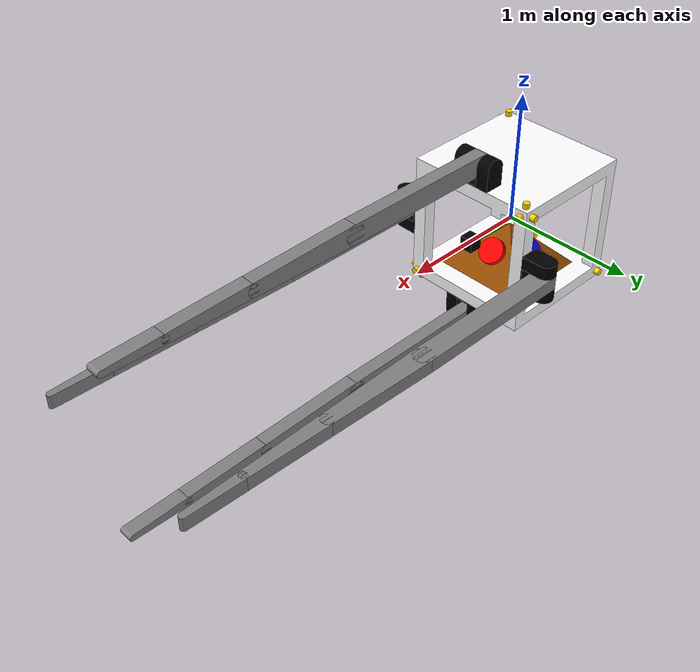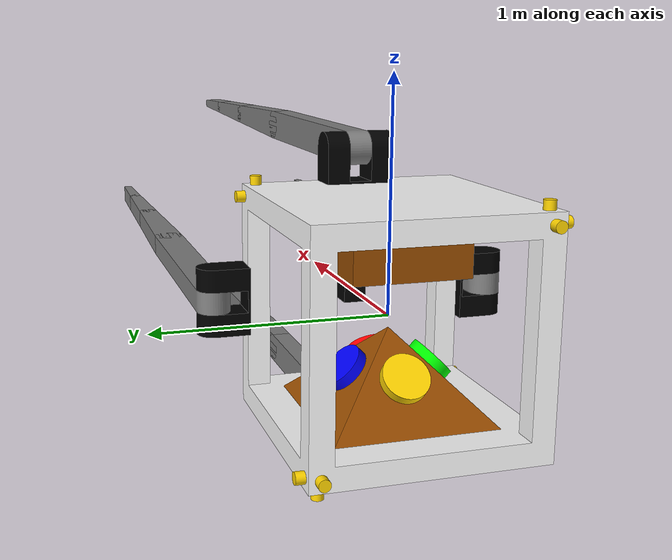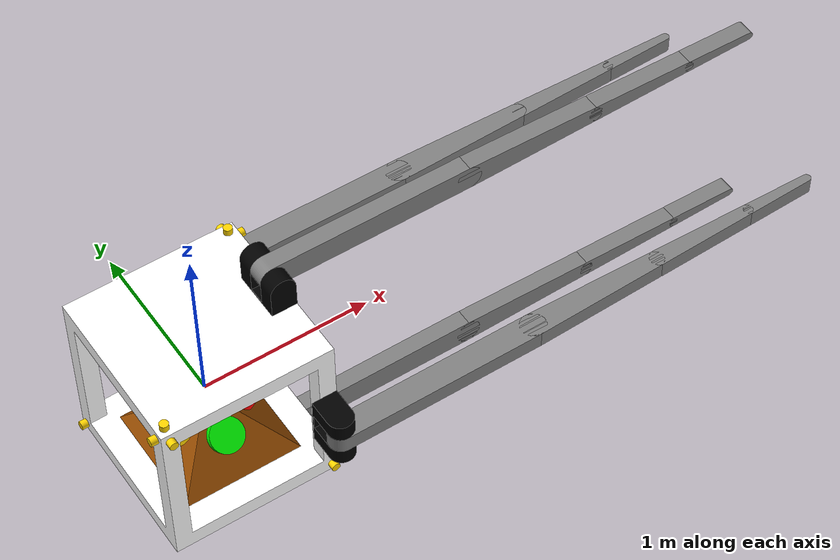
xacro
<?xml version="1.0" ?>
<robot name="reaction_wheel" xmlns:xacro="http://www.ros.org/wiki/xacro">

<xacro:include filename="$(find reaction_wheel_main)/urdf/materials.xacro" />
<xacro:include filename="$(find reaction_wheel_main)/urdf/reaction_wheel.trans" />
<xacro:include filename="$(find reaction_wheel_main)/urdf/reaction_wheel.gazebo" />

<xacro:property name="PI"                value="3.1415926535897931"/>
<xacro:property name="pi"                value="3.1415926535897931"/>

<!-- total base mass = 30 kg -->
<xacro:property name="base_mass"         value="18.4"    />
<xacro:property name="wheel_mass"        value="1"       />
<xacro:property name="mount_mass"        value="1"       />
<xacro:property name="window_mass"       value="0.25"    />
<xacro:property name="thruster_mass"     value="0.05"    />
<xacro:property name="dummy_mass"        value="5"       />
<xacro:property name="base_camera_mass"        value="0.001"       /> <!--unit : [kg]-->

<!-- arm mass = 1kg -->
<xacro:property name="link_1_mass"       value="3"     />
<xacro:property name="link_2_mass"       value="2.5"     />
<xacro:property name="link_3_mass"       value="2"     />
<xacro:property name="link_4_mass"       value="1"    />
<xacro:property name="link_mount_mass"   value="1"    />

<xacro:property name="base_length"       value="1"       />
<xacro:property name="base_thickness"    value="0.1"     />

<xacro:property name="link_mount_length" value="0.225"   />
<xacro:property name="link_mount_height" value="0.3"     />
<xacro:property name="link_mount_width"  value="0.15"    />
<xacro:property name="link_mount_circle" value="0.075"   />
<xacro:property name="link_mount_offset" value="0.0385"  />

<xacro:property name="link_1_height"     value="0.1"     />
<xacro:property name="link_1_length"     value="1.35"    />
<xacro:property name="link_1_width"      value="0.15"    />
<xacro:property name="link_1_circle"     value="0.075"   />

<xacro:property name="link_2_height"     value="0.1"     />
<xacro:property name="link_2_length"     value="0.927654"/>
<xacro:property name="link_2_width"      value="0.15"    />
<xacro:property name="link_2_circle"     value="0.052654"/>

<xacro:property name="link_3_height"     value="0.1"     />
<xacro:property name="link_3_length"     value="0.688548"/>
<xacro:property name="link_3_width"      value="0.105308"/>
<xacro:property name="link_3_circle"     value="0.035894" />

<xacro:property name="link_4_height"     value="0.1"     />
<xacro:property name="link_4_length"     value="0.460616"/>
<xacro:property name="link_4_width"      value="0.071789"/>
<xacro:property name="link_4_circle"     value="0.024721" />

<xacro:property name="mount_height"      value="0.35"    />
<xacro:property name="mount_width"       value="0.7"     />
<xacro:property name="mount_slide"       value="0.606218"/>

<xacro:property name="dummy_length"      value="0.5"     />
<xacro:property name="dummy_depth"       value="0.2"     />

<xacro:property name="wheel_radius"      value="0.2"     />
<xacro:property name="wheel_length"      value="0.1"     />

<xacro:property name="thruster_radius"   value="0.05"    />
<xacro:property name="thruster_length"   value="0.06"    />

<xacro:property name="window_height"     value="0.8"     />
<xacro:property name="window_width"      value="0.8"     />
<xacro:property name="window_depth"      value="0.1"     />

<xacro:property name="base_camera_length"      value="0.005"     /> <!--unit : [m]-->
<link name="dummy_base_link">
</link>
<joint name="dummy_to_base_fixed_joint" type="fixed">
  <parent link="dummy_base_link"/>
  <child link="base_link"/>
  <origin xyz="0 0 0" rpy="0 0 0"/>
</joint>
<link name="base_link">
  <inertial>
    <origin xyz="0 0 0" rpy="0 0 0"/> <!--axis does not move. Visual and Collision part move.-->
    <mass value="${base_mass}"/>
    <inertia ixx="${1/6*base_mass*base_length*base_length}"
             iyy="${1/6*base_mass*base_length*base_length}"
             izz="${1/6*base_mass*base_length*base_length}"
             ixy="0.0" iyz="0.0" ixz="0.0"/>
  </inertial>
  <visual>
    <origin xyz="0.0 0.0 0.0" rpy="0 0 0"/>
    <geometry>
      <mesh filename="package://reaction_wheel_main/meshes/base_link.stl" scale="0.001 0.001 0.001"/>
    </geometry>
    <material name="white"/>
  </visual>
  <collision>
    <origin xyz="0.0 0.0 0.0" rpy="0 0 0"/>
    <geometry>
      <mesh filename="package://reaction_wheel_main/meshes/base_link.stl" scale="0.001 0.001 0.001"/>
    </geometry>
  </collision>
</link>

<link name="thruster_1">
  <inertial>
    <origin xyz="0 0 0" rpy="0 0 0"/>
    <mass value="${thruster_mass}"/>
    <inertia ixx="${1/12*thruster_mass*(3*thruster_radius*thruster_radius+thruster_length*thruster_length)}"
             iyy="${1/12*thruster_mass*(3*thruster_radius*thruster_radius+thruster_length*thruster_length)}"
             izz="${1/2*thruster_mass*thruster_radius*thruster_radius}"
             ixy="0.0" iyz="0.0" ixz="0.0"/>
  </inertial>
  <visual>
    <origin xyz="0.0 0.0 0.0" rpy="0 0 0"/>
    <geometry>
      <mesh filename="package://reaction_wheel_main/meshes/thruster.stl" scale="0.001 0.001 0.001"/>
    </geometry>
    <material name="yellow"/>
  </visual>
  <collision>
    <origin xyz="0.0 0.0 0.0" rpy="0 0 0"/>
    <geometry>
      <mesh filename="package://reaction_wheel_main/meshes/thruster.stl" scale="0.001 0.001 0.001"/>
    </geometry>
  </collision>
</link>

<link name="thruster_2">
  <inertial>
    <origin xyz="0 0 0" rpy="0 0 0"/>
    <mass value="${thruster_mass}"/>
    <inertia ixx="${1/12*thruster_mass*(3*thruster_radius*thruster_radius+thruster_length*thruster_length)}"
             iyy="${1/12*thruster_mass*(3*thruster_radius*thruster_radius+thruster_length*thruster_length)}"
             izz="${1/2*thruster_mass*thruster_radius*thruster_radius}"
             ixy="0.0" iyz="0.0" ixz="0.0"/>
  </inertial>
  <visual>
    <origin xyz="0.0 0.0 0.0" rpy="0 0 0"/>
    <geometry>
      <mesh filename="package://reaction_wheel_main/meshes/thruster.stl" scale="0.001 0.001 0.001"/>
    </geometry>
    <material name="yellow"/>
  </visual>
  <collision>
    <origin xyz="0.0 0.0 0.0" rpy="0 0 0"/>
    <geometry>
      <mesh filename="package://reaction_wheel_main/meshes/thruster.stl" scale="0.001 0.001 0.001"/>
    </geometry>
  </collision>
</link>
<link name="thruster_3">
  <inertial>
    <origin xyz="0 0 0" rpy="0 0 0"/>
    <mass value="${thruster_mass}"/>
    <inertia ixx="${1/12*thruster_mass*(3*thruster_radius*thruster_radius+thruster_length*thruster_length)}"
             iyy="${1/12*thruster_mass*(3*thruster_radius*thruster_radius+thruster_length*thruster_length)}"
             izz="${1/2*thruster_mass*thruster_radius*thruster_radius}"
             ixy="0.0" iyz="0.0" ixz="0.0"/>
  </inertial>
  <visual>
    <origin xyz="0.0 0.0 0.0" rpy="0 0 0"/>
    <geometry>
      <mesh filename="package://reaction_wheel_main/meshes/thruster.stl" scale="0.001 0.001 0.001"/>
    </geometry>
    <material name="yellow"/>
  </visual>
  <collision>
    <origin xyz="0.0 0.0 0.0" rpy="0 0 0"/>
    <geometry>
      <mesh filename="package://reaction_wheel_main/meshes/thruster.stl" scale="0.001 0.001 0.001"/>
    </geometry>
  </collision>
</link>
<link name="thruster_7">
  <inertial>
    <origin xyz="0 0 0" rpy="0 0 0"/>
    <mass value="${thruster_mass}"/>
    <inertia ixx="${1/12*thruster_mass*(3*thruster_radius*thruster_radius+thruster_length*thruster_length)}"
             iyy="${1/12*thruster_mass*(3*thruster_radius*thruster_radius+thruster_length*thruster_length)}"
             izz="${1/2*thruster_mass*thruster_radius*thruster_radius}"
             ixy="0.0" iyz="0.0" ixz="0.0"/>
  </inertial>
  <visual>
    <origin xyz="0.0 0.0 0.0" rpy="0 0 0"/>
    <geometry>
      <mesh filename="package://reaction_wheel_main/meshes/thruster.stl" scale="0.001 0.001 0.001"/>
    </geometry>
    <material name="yellow"/>
  </visual>
  <collision>
    <origin xyz="0.0 0.0 0.0" rpy="0 0 0"/>
    <geometry>
      <mesh filename="package://reaction_wheel_main/meshes/thruster.stl" scale="0.001 0.001 0.001"/>
    </geometry>
  </collision>
</link>
<link name="thruster_8">
  <inertial>
    <origin xyz="0 0 0" rpy="0 0 0"/>
    <mass value="${thruster_mass}"/>
    <inertia ixx="${1/12*thruster_mass*(3*thruster_radius*thruster_radius+thruster_length*thruster_length)}"
             iyy="${1/12*thruster_mass*(3*thruster_radius*thruster_radius+thruster_length*thruster_length)}"
             izz="${1/2*thruster_mass*thruster_radius*thruster_radius}"
             ixy="0.0" iyz="0.0" ixz="0.0"/>
  </inertial>
  <visual>
    <origin xyz="0.0 0.0 0.0" rpy="0 0 0"/>
    <geometry>
      <mesh filename="package://reaction_wheel_main/meshes/thruster.stl" scale="0.001 0.001 0.001"/>
    </geometry>
    <material name="yellow"/>
  </visual>
  <collision>
    <origin xyz="0.0 0.0 0.0" rpy="0 0 0"/>
    <geometry>
      <mesh filename="package://reaction_wheel_main/meshes/thruster.stl" scale="0.001 0.001 0.001"/>
    </geometry>
  </collision>
</link>
<link name="thruster_9">
  <inertial>
    <origin xyz="0 0 0" rpy="0 0 0"/>
    <mass value="${thruster_mass}"/>
    <inertia ixx="${1/12*thruster_mass*(3*thruster_radius*thruster_radius+thruster_length*thruster_length)}"
             iyy="${1/12*thruster_mass*(3*thruster_radius*thruster_radius+thruster_length*thruster_length)}"
             izz="${1/2*thruster_mass*thruster_radius*thruster_radius}"
             ixy="0.0" iyz="0.0" ixz="0.0"/>
  </inertial>
  <visual>
    <origin xyz="0.0 0.0 0.0" rpy="0 0 0"/>
    <geometry>
      <mesh filename="package://reaction_wheel_main/meshes/thruster.stl" scale="0.001 0.001 0.001"/>
    </geometry>
    <material name="yellow"/>
  </visual>
  <collision>
    <origin xyz="0.0 0.0 0.0" rpy="0 0 0"/>
    <geometry>
      <mesh filename="package://reaction_wheel_main/meshes/thruster.stl" scale="0.001 0.001 0.001"/>
    </geometry>
  </collision>
</link>

<link name="thruster_4">
  <inertial>
    <origin xyz="0 0 0" rpy="0 0 0"/>
    <mass value="${thruster_mass}"/>
    <inertia ixx="${1/12*thruster_mass*(3*thruster_radius*thruster_radius+thruster_length*thruster_length)}"
             iyy="${1/12*thruster_mass*(3*thruster_radius*thruster_radius+thruster_length*thruster_length)}"
             izz="${1/2*thruster_mass*thruster_radius*thruster_radius}"
             ixy="0.0" iyz="0.0" ixz="0.0"/>
  </inertial>
  <visual>
    <origin xyz="0.0 0.0 0.0" rpy="0 0 0"/>
    <geometry>
      <mesh filename="package://reaction_wheel_main/meshes/thruster.stl" scale="0.001 0.001 0.001"/>
    </geometry>
    <material name="yellow"/>
  </visual>
  <collision>
    <origin xyz="0.0 0.0 0.0" rpy="0 0 0"/>
    <geometry>
      <mesh filename="package://reaction_wheel_main/meshes/thruster.stl" scale="0.001 0.001 0.001"/>
    </geometry>
  </collision>
</link>
<link name="thruster_5">
  <inertial>
    <origin xyz="0 0 0" rpy="0 0 0"/>
    <mass value="${thruster_mass}"/>
    <inertia ixx="${1/12*thruster_mass*(3*thruster_radius*thruster_radius+thruster_length*thruster_length)}"
             iyy="${1/12*thruster_mass*(3*thruster_radius*thruster_radius+thruster_length*thruster_length)}"
             izz="${1/2*thruster_mass*thruster_radius*thruster_radius}"
             ixy="0.0" iyz="0.0" ixz="0.0"/>
  </inertial>
  <visual>
    <origin xyz="0.0 0.0 0.0" rpy="0 0 0"/>
    <geometry>
      <mesh filename="package://reaction_wheel_main/meshes/thruster.stl" scale="0.001 0.001 0.001"/>
    </geometry>
    <material name="yellow"/>
  </visual>
  <collision>
    <origin xyz="0.0 0.0 0.0" rpy="0 0 0"/>
    <geometry>
      <mesh filename="package://reaction_wheel_main/meshes/thruster.stl" scale="0.001 0.001 0.001"/>
    </geometry>
  </collision>
</link>
<link name="thruster_6">
  <inertial>
    <origin xyz="0 0 0" rpy="0 0 0"/>
    <mass value="${thruster_mass}"/>
    <inertia ixx="${1/12*thruster_mass*(3*thruster_radius*thruster_radius+thruster_length*thruster_length)}"
             iyy="${1/12*thruster_mass*(3*thruster_radius*thruster_radius+thruster_length*thruster_length)}"
             izz="${1/2*thruster_mass*thruster_radius*thruster_radius}"
             ixy="0.0" iyz="0.0" ixz="0.0"/>
  </inertial>
  <visual>
    <origin xyz="0.0 0.0 0.0" rpy="0 0 0"/>
    <geometry>
      <mesh filename="package://reaction_wheel_main/meshes/thruster.stl" scale="0.001 0.001 0.001"/>
    </geometry>
    <material name="yellow"/>
  </visual>
  <collision>
    <origin xyz="0.0 0.0 0.0" rpy="0 0 0"/>
    <geometry>
      <mesh filename="package://reaction_wheel_main/meshes/thruster.stl" scale="0.001 0.001 0.001"/>
    </geometry>
  </collision>
</link>

<link name="thruster_10">
  <inertial>
    <origin xyz="0 0 0" rpy="0 0 0"/>
    <mass value="${thruster_mass}"/>
    <inertia ixx="${1/12*thruster_mass*(3*thruster_radius*thruster_radius+thruster_length*thruster_length)}"
             iyy="${1/12*thruster_mass*(3*thruster_radius*thruster_radius+thruster_length*thruster_length)}"
             izz="${1/2*thruster_mass*thruster_radius*thruster_radius}"
             ixy="0.0" iyz="0.0" ixz="0.0"/>
  </inertial>
  <visual>
    <origin xyz="0.0 0.0 0.0" rpy="0 0 0"/>
    <geometry>
      <mesh filename="package://reaction_wheel_main/meshes/thruster.stl" scale="0.001 0.001 0.001"/>
    </geometry>
    <material name="yellow"/>
  </visual>
  <collision>
    <origin xyz="0.0 0.0 0.0" rpy="0 0 0"/>
    <geometry>
      <mesh filename="package://reaction_wheel_main/meshes/thruster.stl" scale="0.001 0.001 0.001"/>
    </geometry>
  </collision>
</link>
<link name="thruster_11">
  <inertial>
    <origin xyz="0 0 0" rpy="0 0 0"/>
    <mass value="${thruster_mass}"/>
    <inertia ixx="${1/12*thruster_mass*(3*thruster_radius*thruster_radius+thruster_length*thruster_length)}"
             iyy="${1/12*thruster_mass*(3*thruster_radius*thruster_radius+thruster_length*thruster_length)}"
             izz="${1/2*thruster_mass*thruster_radius*thruster_radius}"
             ixy="0.0" iyz="0.0" ixz="0.0"/>
  </inertial>
  <visual>
    <origin xyz="0.0 0.0 0.0" rpy="0 0 0"/>
    <geometry>
      <mesh filename="package://reaction_wheel_main/meshes/thruster.stl" scale="0.001 0.001 0.001"/>
    </geometry>
    <material name="yellow"/>
  </visual>
  <collision>
    <origin xyz="0.0 0.0 0.0" rpy="0 0 0"/>
    <geometry>
      <mesh filename="package://reaction_wheel_main/meshes/thruster.stl" scale="0.001 0.001 0.001"/>
    </geometry>
  </collision>
</link>
<link name="thruster_12">
  <inertial>
    <origin xyz="0 0 0" rpy="0 0 0"/>
    <mass value="${thruster_mass}"/>
    <inertia ixx="${1/12*thruster_mass*(3*thruster_radius*thruster_radius+thruster_length*thruster_length)}"
             iyy="${1/12*thruster_mass*(3*thruster_radius*thruster_radius+thruster_length*thruster_length)}"
             izz="${1/2*thruster_mass*thruster_radius*thruster_radius}"
             ixy="0.0" iyz="0.0" ixz="0.0"/>
  </inertial>
  <visual>
    <origin xyz="0.0 0.0 0.0" rpy="0 0 0"/>
    <geometry>
      <mesh filename="package://reaction_wheel_main/meshes/thruster.stl" scale="0.001 0.001 0.001"/>
    </geometry>
    <material name="yellow"/>
  </visual>
  <collision>
    <origin xyz="0.0 0.0 0.0" rpy="0 0 0"/>
    <geometry>
      <mesh filename="package://reaction_wheel_main/meshes/thruster.stl" scale="0.001 0.001 0.001"/>
    </geometry>
  </collision>
</link>

<link name="front_window">
  <inertial>
    <origin xyz="0 0 0" rpy="0 0 0"/>
    <mass value="${window_mass}"/>
    <inertia ixx="${1/3*window_mass*window_height*window_width}"
             iyy="${1/3*window_mass*window_height*window_depth}"
             izz="${1/3*window_mass*window_width*window_depth}"
             ixy="0.0" iyz="0.0" ixz="0.0"/>
  </inertial>
  <collision>
    <origin xyz="0.0 0.0 0.0" rpy="0 0 0"/>
    <geometry>
      <mesh filename="package://reaction_wheel_main/meshes/window.stl" scale="0.001 0.001 0.001"/>
    </geometry>
  </collision>
</link>
<link name="right_window">
  <inertial>
    <origin xyz="0 0 0" rpy="0 0 0"/>
    <mass value="${window_mass}"/>
    <inertia ixx="${1/3*window_mass*window_height*window_width}"
             iyy="${1/3*window_mass*window_height*window_depth}"
             izz="${1/3*window_mass*window_width*window_depth}"
             ixy="0.0" iyz="0.0" ixz="0.0"/>
  </inertial>
  <collision>
    <origin xyz="0.0 0.0 0.0" rpy="0 0 0"/>
    <geometry>
      <mesh filename="package://reaction_wheel_main/meshes/window.stl" scale="0.001 0.001 0.001"/>
    </geometry>
  </collision>
</link>
<link name="left_window">
  <inertial>
    <origin xyz="0 0 0" rpy="0 0 0"/>
    <mass value="${window_mass}"/>
    <inertia ixx="${1/3*window_mass*window_height*window_width}"
             iyy="${1/3*window_mass*window_height*window_depth}"
             izz="${1/3*window_mass*window_width*window_depth}"
             ixy="0.0" iyz="0.0" ixz="0.0"/>
  </inertial>
  <collision>
    <origin xyz="0.0 0.0 0.0" rpy="0 0 0"/>
    <geometry>
      <mesh filename="package://reaction_wheel_main/meshes/window.stl" scale="0.001 0.001 0.001"/>
    </geometry>
  </collision>
</link>
<link name="back_window">
  <inertial>
    <origin xyz="0 0 0" rpy="0 0 0"/>
    <mass value="${window_mass}"/>
    <inertia ixx="${1/3*window_mass*window_height*window_width}"
             iyy="${1/3*window_mass*window_height*window_depth}"
             izz="${1/3*window_mass*window_width*window_depth}"
             ixy="0.0" iyz="0.0" ixz="0.0"/>
  </inertial>
  <collision>
    <origin xyz="0.0 0.0 0.0" rpy="0 0 0"/>
    <geometry>
      <mesh filename="package://reaction_wheel_main/meshes/window.stl" scale="0.001 0.001 0.001"/>
    </geometry>
  </collision>
</link>

<link name="base_camera">
  <inertial>
    <origin xyz="0 0 0" rpy="0 0 0"/> <!--axis does not move. Visual and Collision part move.-->
    <mass value="${base_camera_mass}"/>
    <inertia ixx="${1/6*base_camera_mass*base_camera_length*base_camera_length}"
             iyy="${1/6*base_camera_mass*base_camera_length*base_camera_length}"
             izz="${1/6*base_camera_mass*base_camera_length*base_camera_length}"
             ixy="0.0" iyz="0.0" ixz="0.0"/>
  </inertial>
  <visual>
    <origin xyz="0.0 0.0 0.0" rpy="0 0 0"/>
    <geometry>
      <mesh filename="package://reaction_wheel_main/meshes/base_camera.stl" scale="0.01 0.01 0.01"/>
    </geometry>
    <material name="black"/>
  </visual>
</link>
<link name="dummy">
  <inertial>
    <origin xyz="0 0 0" rpy="0 0 0"/>
    <mass value="${dummy_mass}"/>
    <inertia ixx="${1/3*dummy_mass*dummy_length*dummy_length}"
             iyy="${1/3*dummy_mass*dummy_length*dummy_depth}"
             izz="${1/3*dummy_mass*dummy_length*dummy_depth}"
             ixy="0.0" iyz="0.0" ixz="0.0"/>
  </inertial>
  <visual>
    <origin xyz="0.0 0.0 0.0" rpy="0 0 0"/>
    <geometry>
      <mesh filename="package://reaction_wheel_main/meshes/dummy.stl" scale="0.001 0.001 0.001"/>
    </geometry>
    <material name="brown"/>
  </visual>
  <collision>
    <origin xyz="0.0 0.0 0.0" rpy="0 0 0"/>
    <geometry>
      <mesh filename="package://reaction_wheel_main/meshes/dummy.stl" scale="0.001 0.001 0.001"/>
    </geometry>
  </collision>
</link>

<link name="reaction_wheel_mount">
  <inertial>
    <origin xyz="0 0 -0.0875" rpy="0 0 0"/>
    <mass value="${mount_mass}"/>
    <inertia ixx="${1/20*mount_mass*(2*mount_width*mount_width)}"
             iyy="${1/20*mount_mass*(2*mount_width*mount_width)}"
             izz="${1/20*mount_mass*(2*mount_width*mount_width)}"
             ixy="0.0" iyz="0.0" ixz="0.0"/>
  </inertial>
  <visual>
    <origin xyz="0.0 0.0 0.0" rpy="0 0 0"/>
    <geometry>
      <mesh filename="package://reaction_wheel_main/meshes/reaction_wheel_mount.stl" scale="0.001 0.001 0.001"/>
    </geometry>
    <material name="brown"/>
  </visual>
  <collision>
    <origin xyz="0.0 0.0 0.0" rpy="0 0 0"/>
    <geometry>
      <mesh filename="package://reaction_wheel_main/meshes/reaction_wheel_mount.stl" scale="0.001 0.001 0.001"/>
    </geometry>
  </collision>
</link>

<link name="reaction_wheel_front">
  <inertial>
    <origin xyz="0 0 0" rpy="0 0 0"/>
    <mass value="${wheel_mass}"/>
    <inertia ixx="${1/12*wheel_mass*(3*wheel_radius*wheel_radius+wheel_length*wheel_length)}"
             iyy="${1/12*wheel_mass*(3*wheel_radius*wheel_radius+wheel_length*wheel_length)}"
             izz="${1/2*wheel_mass*wheel_radius*wheel_radius}"
             ixy="0.0" iyz="0.0" ixz="0.0"/>

  </inertial>
  <visual>
    <origin xyz="0.0 0.0 0.0" rpy="0 0 0"/>
    <geometry>
      <mesh filename="package://reaction_wheel_main/meshes/reaction_wheel.stl" scale="0.001 0.001 0.001"/>
    </geometry>
    <material name="red"/>
  </visual>
  <collision>
    <origin xyz="0.0 0.0 0.0" rpy="0 0 0"/>
    <geometry>
      <mesh filename="package://reaction_wheel_main/meshes/reaction_wheel.stl" scale="0.001 0.001 0.001"/>
    </geometry>
  </collision>
</link>

<link name="reaction_wheel_right">
  <inertial>
    <origin xyz="0 0 0" rpy="0 0 0"/>
    <mass value="${wheel_mass}"/>
    <inertia ixx="${1/12*wheel_mass*(3*wheel_radius*wheel_radius+wheel_length*wheel_length)}"
             iyy="${1/12*wheel_mass*(3*wheel_radius*wheel_radius+wheel_length*wheel_length)}"
             izz="${1/2*wheel_mass*wheel_radius*wheel_radius}"
             ixy="0.0" iyz="0.0" ixz="0.0"/>

  </inertial>
  <visual>
    <origin xyz="0.0 0.0 0.0" rpy="0 0 0"/>
    <geometry>
      <mesh filename="package://reaction_wheel_main/meshes/reaction_wheel.stl" scale="0.001 0.001 0.001"/>
    </geometry>
    <material name="green"/>
  </visual>
  <collision>
    <origin xyz="0.0 0.0 0.0" rpy="0 0 0"/>
    <geometry>
      <mesh filename="package://reaction_wheel_main/meshes/reaction_wheel.stl" scale="0.001 0.001 0.001"/>
    </geometry>
  </collision>
</link>

<link name="reaction_wheel_left">
  <inertial>
    <origin xyz="0 0 0" rpy="0 0 0"/>
    <mass value="${wheel_mass}"/>
    <inertia ixx="${1/12*wheel_mass*(3*wheel_radius*wheel_radius+wheel_length*wheel_length)}"
             iyy="${1/12*wheel_mass*(3*wheel_radius*wheel_radius+wheel_length*wheel_length)}"
             izz="${1/2*wheel_mass*wheel_radius*wheel_radius}"
             ixy="0.0" iyz="0.0" ixz="0.0"/>

  </inertial>
  <visual>
    <origin xyz="0.0 0.0 0.0" rpy="0 0 0"/>
    <geometry>
      <mesh filename="package://reaction_wheel_main/meshes/reaction_wheel.stl" scale="0.001 0.001 0.001"/>
    </geometry>
    <material name="blue"/>
  </visual>
  <collision>
    <origin xyz="0.0 0.0 0.0" rpy="0 0 0"/>
    <geometry>
      <mesh filename="package://reaction_wheel_main/meshes/reaction_wheel.stl" scale="0.001 0.001 0.001"/>
    </geometry>
  </collision>
</link>

<link name="reaction_wheel_back">
  <inertial>
    <origin xyz="0 0 0" rpy="0 0 0"/>
    <mass value="${wheel_mass}"/>
    <inertia ixx="${1/12*wheel_mass*(3*wheel_radius*wheel_radius+wheel_length*wheel_length)}"
             iyy="${1/12*wheel_mass*(3*wheel_radius*wheel_radius+wheel_length*wheel_length)}"
             izz="${1/2*wheel_mass*wheel_radius*wheel_radius}"
             ixy="0.0" iyz="0.0" ixz="0.0"/>

  </inertial>
  <visual>
    <origin xyz="0.0 0.0 0.0" rpy="0 0 0"/>
    <geometry>
      <mesh filename="package://reaction_wheel_main/meshes/reaction_wheel.stl" scale="0.001 0.001 0.001"/>
    </geometry>
    <material name="yellow"/>
  </visual>
  <collision>
    <origin xyz="0.0 0.0 0.0" rpy="0 0 0"/>
    <geometry>
      <mesh filename="package://reaction_wheel_main/meshes/reaction_wheel.stl" scale="0.001 0.001 0.001"/>
    </geometry>
  </collision>

</link>

<link name="tentacle_right_mount">
  <inertial>
    <origin xyz="0.102783 0 0" rpy="0 0 0"/>
    <mass value="${link_mount_mass}"/>
    <inertia ixx="${1/6*link_mount_mass*link_mount_height*link_mount_width}"
             iyy="${1/6*link_mount_mass*link_mount_height*link_mount_length}"
             izz="${1/6*link_mount_mass*link_mount_length*link_mount_width}"
             ixy="0.0" iyz="0.0" ixz="0.0"/>
  </inertial>
  <visual>
    <origin xyz="0.0 0.0 0.0" rpy="0 0 0"/>
    <geometry>
      <mesh filename="package://reaction_wheel_main/meshes/base_joint_mount.stl" scale="0.001 0.001 0.001"/>
    </geometry>
    <material name="black"/>
  </visual>
  <collision>
    <origin xyz="0.0 0.0 0.0" rpy="0 0 0"/>
    <geometry>
      <mesh filename="package://reaction_wheel_main/meshes/base_joint_mount.stl" scale="0.001 0.001 0.001"/>
    </geometry>
  </collision>
</link>

<link name="tentacle_left_mount">
  <inertial>
    <origin xyz="0.102783 0 0" rpy="0 0 0"/>
    <mass value="${link_mount_mass}"/>
    <inertia ixx="${1/6*link_mount_mass*link_mount_height*link_mount_width}"
             iyy="${1/6*link_mount_mass*link_mount_height*link_mount_length}"
             izz="${1/6*link_mount_mass*link_mount_length*link_mount_width}"
             ixy="0.0" iyz="0.0" ixz="0.0"/>
  </inertial>
  <visual>
    <origin xyz="0.0 0.0 0.0" rpy="0 0 0"/>
    <geometry>
      <mesh filename="package://reaction_wheel_main/meshes/base_joint_mount.stl" scale="0.001 0.001 0.001"/>
    </geometry>
    <material name="black"/>
  </visual>
  <collision>
    <origin xyz="0.0 0.0 0.0" rpy="0 0 0"/>
    <geometry>
      <mesh filename="package://reaction_wheel_main/meshes/base_joint_mount.stl" scale="0.001 0.001 0.001"/>
    </geometry>
  </collision>
</link>

<link name="tentacle_up_mount">
  <inertial>
    <origin xyz="0.102783 0 0" rpy="0 0 0"/>
    <mass value="${link_mount_mass}"/>
    <inertia ixx="${1/6*link_mount_mass*link_mount_height*link_mount_width}"
             iyy="${1/6*link_mount_mass*link_mount_height*link_mount_length}"
             izz="${1/6*link_mount_mass*link_mount_length*link_mount_width}"
             ixy="0.0" iyz="0.0" ixz="0.0"/>
  </inertial>
  <visual>
    <origin xyz="0.0 0.0 0.0" rpy="0 0 0"/>
    <geometry>
      <mesh filename="package://reaction_wheel_main/meshes/base_joint_mount.stl" scale="0.001 0.001 0.001"/>
    </geometry>
    <material name="black"/>
  </visual>
  <collision>
    <origin xyz="0.0 0.0 0.0" rpy="0 0 0"/>
    <geometry>
      <mesh filename="package://reaction_wheel_main/meshes/base_joint_mount.stl" scale="0.001 0.001 0.001"/>
    </geometry>
  </collision>
</link>

<link name="tentacle_down_mount">
  <inertial>
    <origin xyz="0.102783 0 0" rpy="0 0 0"/>
    <mass value="${link_mount_mass}"/>
    <inertia ixx="${1/6*link_mount_mass*link_mount_height*link_mount_width}"
             iyy="${1/6*link_mount_mass*link_mount_height*link_mount_length}"
             izz="${1/6*link_mount_mass*link_mount_length*link_mount_width}"
             ixy="0.0" iyz="0.0" ixz="0.0"/>
  </inertial>
  <visual>
    <origin xyz="0.0 0.0 0.0" rpy="0 0 0"/>
    <geometry>
      <mesh filename="package://reaction_wheel_main/meshes/base_joint_mount.stl" scale="0.001 0.001 0.001"/>
    </geometry>
    <material name="black"/>
  </visual>
  <collision>
    <origin xyz="0.0 0.0 0.0" rpy="0 0 0"/>
    <geometry>
      <mesh filename="package://reaction_wheel_main/meshes/base_joint_mount.stl" scale="0.001 0.001 0.001"/>
    </geometry>
  </collision>
</link>

<link name="tentacle_right_link_1">
  <inertial>
    <origin xyz="0.6 0 0" rpy="0 0 0"/>
    <mass value="${link_1_mass}"/>
    <inertia ixx="${1/6*link_1_mass*link_1_height*link_1_width}"
             iyy="${1/6*link_1_mass*link_1_height*link_1_length}"
             izz="${1/6*link_1_mass*link_1_length*link_1_width}"
             ixy="0.0" iyz="0.0" ixz="0.0"/>
  </inertial>
  <visual>
    <origin xyz="0.0 0.0 0.0" rpy="0 0 0"/>
    <geometry>
      <mesh filename="package://reaction_wheel_main/meshes/link_no_1.stl" scale="0.001 0.001 0.001"/>
    </geometry>
    <material name="silver"/>
  </visual>
  <collision>
    <origin xyz="0.0 0.0 0.0" rpy="0 0 0"/>
    <geometry>
      <mesh filename="package://reaction_wheel_main/meshes/link_no_1.stl" scale="0.001 0.001 0.001"/>
    </geometry>
  </collision>
</link>

<link name="tentacle_left_link_1">
  <inertial>
    <origin xyz="0.6 0 0" rpy="0 0 0"/>
    <mass value="${link_1_mass}"/>
    <inertia ixx="${1/6*link_1_mass*link_1_height*link_1_width}"
             iyy="${1/6*link_1_mass*link_1_height*link_1_length}"
             izz="${1/6*link_1_mass*link_1_length*link_1_width}"
             ixy="0.0" iyz="0.0" ixz="0.0"/>
  </inertial>
  <visual>
    <origin xyz="0.0 0.0 0.0" rpy="0 0 0"/>
    <geometry>
      <mesh filename="package://reaction_wheel_main/meshes/link_no_1.stl" scale="0.001 0.001 0.001"/>
    </geometry>
    <material name="silver"/>
  </visual>
  <collision>
    <origin xyz="0.0 0.0 0.0" rpy="0 0 0"/>
    <geometry>
      <mesh filename="package://reaction_wheel_main/meshes/link_no_1.stl" scale="0.001 0.001 0.001"/>
    </geometry>
  </collision>
</link>

<link name="tentacle_right_link_2">
  <inertial>
    <origin xyz="0.262191 0 0" rpy="0 0 0"/>
    <mass value="${link_2_mass}"/>
    <inertia ixx="${1/6*link_2_mass*link_2_height*link_2_width}"
             iyy="${1/6*link_2_mass*link_2_height*link_2_length}"
             izz="${1/6*link_2_mass*link_2_length*link_2_width}"
             ixy="0.0" iyz="0.0" ixz="0.0"/>
  </inertial>
  <visual>
    <origin xyz="0.0 0.0 0.0" rpy="0 0 0"/>
    <geometry>
      <mesh filename="package://reaction_wheel_main/meshes/link_no_2.stl" scale="0.001 0.001 0.001"/>
    </geometry>
    <material name="silver"/>
  </visual>
  <collision>
    <origin xyz="0.0 0.0 0.0" rpy="0 0 0"/>
    <geometry>
      <mesh filename="package://reaction_wheel_main/meshes/link_no_2.stl" scale="0.001 0.001 0.001"/>
    </geometry>
  </collision>
</link>

<link name="tentacle_left_link_2">
  <inertial>
    <origin xyz="0.262191 0 0" rpy="0 0 0"/>
    <mass value="${link_2_mass}"/>
    <inertia ixx="${1/6*link_2_mass*link_2_height*link_2_width}"
             iyy="${1/6*link_2_mass*link_2_height*link_2_length}"
             izz="${1/6*link_2_mass*link_2_length*link_2_width}"
             ixy="0.0" iyz="0.0" ixz="0.0"/>
  </inertial>
  <visual>
    <origin xyz="0.0 0.0 0.0" rpy="0 0 0"/>
    <geometry>
      <mesh filename="package://reaction_wheel_main/meshes/link_no_2.stl" scale="0.001 0.001 0.001"/>
    </geometry>
    <material name="silver"/>
  </visual>
  <collision>
    <origin xyz="0.0 0.0 0.0" rpy="0 0 0"/>
    <geometry>
      <mesh filename="package://reaction_wheel_main/meshes/link_no_2.stl" scale="0.001 0.001 0.001"/>
    </geometry>
  </collision>
</link>

<link name="tentacle_left_link_3">
  <inertial>
    <origin xyz="0.270232 0 0" rpy="0 0 0"/>
    <mass value="${link_3_mass}"/>
    <inertia ixx="${1/6*link_3_mass*link_3_height*link_3_width}"
             iyy="${1/6*link_3_mass*link_3_height*link_3_length}"
             izz="${1/6*link_3_mass*link_3_length*link_3_width}"
             ixy="0.0" iyz="0.0" ixz="0.0"/>
  </inertial>
  <visual>
    <origin xyz="0.0 0.0 0.0" rpy="0 0 0"/>
    <geometry>
      <mesh filename="package://reaction_wheel_main/meshes/link_no_3.stl" scale="0.001 0.001 0.001"/>
    </geometry>
    <material name="silver"/>
  </visual>
  <collision>
    <origin xyz="0.0 0.0 0.0" rpy="0 0 0"/>
    <geometry>
      <mesh filename="package://reaction_wheel_main/meshes/link_no_3.stl" scale="0.001 0.001 0.001"/>
    </geometry>
  </collision>
</link>

<link name="tentacle_right_link_3">
  <inertial>
    <origin xyz="0.270232 0 0" rpy="0 0 0"/>
    <mass value="${link_3_mass}"/>
    <inertia ixx="${1/6*link_3_mass*link_3_height*link_3_width}"
             iyy="${1/6*link_3_mass*link_3_height*link_3_length}"
             izz="${1/6*link_3_mass*link_3_length*link_3_width}"
             ixy="0.0" iyz="0.0" ixz="0.0"/>
  </inertial>
  <visual>
    <origin xyz="0.0 0.0 0.0" rpy="0 0 0"/>
    <geometry>
      <mesh filename="package://reaction_wheel_main/meshes/link_no_3.stl" scale="0.001 0.001 0.001"/>
    </geometry>
    <material name="silver"/>
  </visual>
  <collision>
    <origin xyz="0.0 0.0 0.0" rpy="0 0 0"/>
    <geometry>
      <mesh filename="package://reaction_wheel_main/meshes/link_no_3.stl" scale="0.001 0.001 0.001"/>
    </geometry>
  </collision>
</link>

<link name="tentacle_right_link_4">
  <inertial>
    <origin xyz="0.180482 0 0" rpy="0 0 0"/>
    <mass value="${link_4_mass}"/>
    <inertia ixx="${1/6*link_4_mass*link_4_height*link_4_width}"
             iyy="${1/6*link_4_mass*link_4_height*link_4_length}"
             izz="${1/6*link_4_mass*link_4_length*link_4_width}"
             ixy="0.0" iyz="0.0" ixz="0.0"/>

  </inertial>
  <visual>
    <origin xyz="0.0 0.0 0.0" rpy="0 0 0"/>
    <geometry>
      <mesh filename="package://reaction_wheel_main/meshes/link_no_4.stl" scale="0.001 0.001 0.001"/>
    </geometry>
    <material name="silver"/>
  </visual>
  <collision>
    <origin xyz="0.0 0.0 0.0" rpy="0 0 0"/>
    <geometry>
      <mesh filename="package://reaction_wheel_main/meshes/link_no_4.stl" scale="0.001 0.001 0.001"/>
    </geometry>
  </collision>
</link>
<link name="tentacle_left_link_4">
  <inertial>
    <origin xyz="0.180482 0 0" rpy="0 0 0"/>
    <mass value="${link_4_mass}"/>
    <inertia ixx="${1/6*link_4_mass*link_4_height*link_4_width}"
             iyy="${1/6*link_4_mass*link_4_height*link_4_length}"
             izz="${1/6*link_4_mass*link_4_length*link_4_width}"
             ixy="0.0" iyz="0.0" ixz="0.0"/>
  </inertial>
  <visual>
    <origin xyz="0.0 0.0 0.0" rpy="0 0 0"/>
    <geometry>
      <mesh filename="package://reaction_wheel_main/meshes/link_no_4.stl" scale="0.001 0.001 0.001"/>
    </geometry>
    <material name="silver"/>
  </visual>
  <collision>
    <origin xyz="0.0 0.0 0.0" rpy="0 0 0"/>
    <geometry>
      <mesh filename="package://reaction_wheel_main/meshes/link_no_4.stl" scale="0.001 0.001 0.001"/>
    </geometry>
  </collision>
</link>

<link name="tentacle_up_link_1">
  <inertial>
    <origin xyz="0.6 0 0" rpy="0 0 0"/>
    <mass value="${link_1_mass}"/>
    <inertia ixx="${1/6*link_1_mass*link_1_height*link_1_width}"
             iyy="${1/6*link_1_mass*link_1_height*link_1_length}"
             izz="${1/6*link_1_mass*link_1_length*link_1_width}"
             ixy="0.0" iyz="0.0" ixz="0.0"/>

  </inertial>
  <visual>
    <origin xyz="0.0 0.0 0.0" rpy="0 0 0"/>
    <geometry>
      <mesh filename="package://reaction_wheel_main/meshes/link_no_1.stl" scale="0.001 0.001 0.001"/>
    </geometry>
    <material name="silver"/>
  </visual>
  <collision>
    <origin xyz="0.0 0.0 0.0" rpy="0 0 0"/>
    <geometry>
      <mesh filename="package://reaction_wheel_main/meshes/link_no_1.stl" scale="0.001 0.001 0.001"/>
    </geometry>
  </collision>
</link>

<link name="tentacle_up_link_2">
  <inertial>
    <origin xyz="0.262191 0 0" rpy="0 0 0"/>
    <mass value="${link_2_mass}"/>
    <inertia ixx="${1/6*link_2_mass*link_2_height*link_2_width}"
             iyy="${1/6*link_2_mass*link_2_height*link_2_length}"
             izz="${1/6*link_2_mass*link_2_length*link_2_width}"
             ixy="0.0" iyz="0.0" ixz="0.0"/>

  </inertial>
  <visual>
    <origin xyz="0.0 0.0 0.0" rpy="0 0 0"/>
    <geometry>
      <mesh filename="package://reaction_wheel_main/meshes/link_no_2.stl" scale="0.001 0.001 0.001"/>
    </geometry>
    <material name="silver"/>
  </visual>
  <collision>
    <origin xyz="0.0 0.0 0.0" rpy="0 0 0"/>
    <geometry>
      <mesh filename="package://reaction_wheel_main/meshes/link_no_2.stl" scale="0.001 0.001 0.001"/>
    </geometry>
  </collision>
</link>

<link name="tentacle_up_link_3">
  <inertial>
    <origin xyz="0.270232 0 0" rpy="0 0 0"/>
    <mass value="${link_3_mass}"/>
    <inertia ixx="${1/6*link_3_mass*link_3_height*link_3_width}"
             iyy="${1/6*link_3_mass*link_3_height*link_3_length}"
             izz="${1/6*link_3_mass*link_3_length*link_3_width}"
             ixy="0.0" iyz="0.0" ixz="0.0"/>

  </inertial>
  <visual>
    <origin xyz="0.0 0.0 0.0" rpy="0 0 0"/>
    <geometry>
      <mesh filename="package://reaction_wheel_main/meshes/link_no_3.stl" scale="0.001 0.001 0.001"/>
    </geometry>
    <material name="silver"/>
  </visual>
  <collision>
    <origin xyz="0.0 0.0 0.0" rpy="0 0 0"/>
    <geometry>
      <mesh filename="package://reaction_wheel_main/meshes/link_no_3.stl" scale="0.001 0.001 0.001"/>
    </geometry>
  </collision>
</link>

<link name="tentacle_up_link_4">
  <inertial>
    <origin xyz="0.180482 0 0" rpy="0 0 0"/>
    <mass value="${link_4_mass}"/>
    <inertia ixx="${1/6*link_4_mass*link_4_height*link_4_width}"
             iyy="${1/6*link_4_mass*link_4_height*link_4_length}"
             izz="${1/6*link_4_mass*link_4_length*link_4_width}"
             ixy="0.0" iyz="0.0" ixz="0.0"/>

  </inertial>
  <visual>
    <origin xyz="0.0 0.0 0.0" rpy="0 0 0"/>
    <geometry>
      <mesh filename="package://reaction_wheel_main/meshes/link_no_4.stl" scale="0.001 0.001 0.001"/>
    </geometry>
    <material name="silver"/>
  </visual>
  <collision>
    <origin xyz="0.0 0.0 0.0" rpy="0 0 0"/>
    <geometry>
      <mesh filename="package://reaction_wheel_main/meshes/link_no_4.stl" scale="0.001 0.001 0.001"/>
    </geometry>
  </collision>
</link>

<link name="tentacle_down_link_1">
  <inertial>
    <origin xyz="0.6 0 0" rpy="0 0 0"/>
    <mass value="${link_1_mass}"/>
    <inertia ixx="${1/6*link_1_mass*link_1_height*link_1_width}"
             iyy="${1/6*link_1_mass*link_1_height*link_1_length}"
             izz="${1/6*link_1_mass*link_1_length*link_1_width}"
             ixy="0.0" iyz="0.0" ixz="0.0"/>

  </inertial>
  <visual>
    <origin xyz="0.0 0.0 0.0" rpy="0 0 0"/>
    <geometry>
      <mesh filename="package://reaction_wheel_main/meshes/link_no_1.stl" scale="0.001 0.001 0.001"/>
    </geometry>
    <material name="silver"/>
  </visual>
  <collision>
    <origin xyz="0.0 0.0 0.0" rpy="0 0 0"/>
    <geometry>
      <mesh filename="package://reaction_wheel_main/meshes/link_no_1.stl" scale="0.001 0.001 0.001"/>
    </geometry>
  </collision>
</link>

<link name="tentacle_down_link_2">
  <inertial>
    <origin xyz="0.262191 0 0" rpy="0 0 0"/>
    <mass value="${link_2_mass}"/>
    <inertia ixx="${1/6*link_2_mass*link_2_height*link_2_width}"
             iyy="${1/6*link_2_mass*link_2_height*link_2_length}"
             izz="${1/6*link_2_mass*link_2_length*link_2_width}"
             ixy="0.0" iyz="0.0" ixz="0.0"/>

  </inertial>
  <visual>
    <origin xyz="0.0 0.0 0.0" rpy="0 0 0"/>
    <geometry>
      <mesh filename="package://reaction_wheel_main/meshes/link_no_2.stl" scale="0.001 0.001 0.001"/>
    </geometry>
    <material name="silver"/>
  </visual>
  <collision>
    <origin xyz="0.0 0.0 0.0" rpy="0 0 0"/>
    <geometry>
      <mesh filename="package://reaction_wheel_main/meshes/link_no_2.stl" scale="0.001 0.001 0.001"/>
    </geometry>
  </collision>
</link>

<link name="tentacle_down_link_3">
  <inertial>
    <origin xyz="0.270232 0 0" rpy="0 0 0"/>
    <mass value="${link_3_mass}"/>
    <inertia ixx="${1/6*link_3_mass*link_3_height*link_3_width}"
             iyy="${1/6*link_3_mass*link_3_height*link_3_length}"
             izz="${1/6*link_3_mass*link_3_length*link_3_width}"
             ixy="0.0" iyz="0.0" ixz="0.0"/>

  </inertial>
  <visual>
    <origin xyz="0.0 0.0 0.0" rpy="0 0 0"/>
    <geometry>
      <mesh filename="package://reaction_wheel_main/meshes/link_no_3.stl" scale="0.001 0.001 0.001"/>
    </geometry>
    <material name="silver"/>
  </visual>
  <collision>
    <origin xyz="0.0 0.0 0.0" rpy="0 0 0"/>
    <geometry>
      <mesh filename="package://reaction_wheel_main/meshes/link_no_3.stl" scale="0.001 0.001 0.001"/>
    </geometry>
  </collision>
</link>

<link name="tentacle_down_link_4">
  <inertial>
    <origin xyz="0.180482 0 0" rpy="0 0 0"/>
    <mass value="${link_4_mass}"/>
    <inertia ixx="${1/6*link_4_mass*link_4_height*link_4_width}"
             iyy="${1/6*link_4_mass*link_4_height*link_4_length}"
             izz="${1/6*link_4_mass*link_4_length*link_4_width}"
             ixy="0.0" iyz="0.0" ixz="0.0"/>

  </inertial>
  <visual>
    <origin xyz="0.0 0.0 0.0" rpy="0 0 0"/>
    <geometry>
      <mesh filename="package://reaction_wheel_main/meshes/link_no_4.stl" scale="0.001 0.001 0.001"/>
    </geometry>
    <material name="silver"/>
  </visual>
  <collision>
    <origin xyz="0.0 0.0 0.0" rpy="0 0 0"/>
    <geometry>
      <mesh filename="package://reaction_wheel_main/meshes/link_no_4.stl" scale="0.001 0.001 0.001"/>
    </geometry>
  </collision>
</link>

<joint name="mount_joint" type="fixed">
  <parent link="base_link"/>
  <child link="reaction_wheel_mount"/>
  <origin xyz="0 0 -${base_length/2 - base_thickness - mount_height/2}" rpy="0 0 0"/>
</joint>

<joint name="dummy_joint" type="fixed">
  <parent link="base_link"/>
  <child link="dummy"/>
  <origin xyz="0 0 ${base_length/2 - base_thickness - dummy_depth/2}" rpy="0 0 0"/>
</joint>
<joint name="tentacle_right_mount_joint" type="fixed">
  <parent link="base_link"/>
  <child link="tentacle_right_mount"/>
  <origin xyz="${base_length/2 - link_mount_length/2 + link_mount_offset} -${base_length/2} 0" rpy="0 0 -${pi/2}"/>
</joint>

<joint name="tentacle_left_mount_joint" type="fixed">
  <parent link="base_link"/>
  <child link="tentacle_left_mount"/>
  <origin xyz="${base_length/2 - link_mount_length/2 + link_mount_offset} ${base_length/2} 0" rpy="0 0 ${pi/2}"  />
</joint>

<joint name="tentacle_up_mount_joint" type="fixed">
  <parent link="base_link"/>
  <child link="tentacle_up_mount"/>
  <origin xyz="${base_length/2 - link_mount_length/2 + link_mount_offset} 0 ${base_length/2}" rpy="${pi/2} -${pi/2} 0"  />
</joint>

<joint name="tentacle_down_mount_joint" type="fixed">
  <parent link="base_link"/>
  <child link="tentacle_down_mount"/>
  <origin xyz="${base_length/2 - link_mount_length/2 + link_mount_offset} 0 -${base_length/2}" rpy="${pi/2} ${pi/2} 0"  />
</joint>

<joint name="front_window_joint" type="fixed">
  <parent link="base_link"/>
  <child link="front_window"/>
  <origin xyz="${base_length/2 -base_thickness + window_depth/2} 0 0" rpy="0 ${pi/2} 0"/>
</joint>
<joint name="right_window_joint" type="fixed">
  <parent link="base_link"/>
  <child link="right_window"/>
  <origin xyz="0 -${base_length/2 -base_thickness + window_depth/2} 0" rpy="${pi/2} ${pi/2} 0"/>
</joint>
<joint name="left_window_joint" type="fixed">
  <parent link="base_link"/>
  <child link="left_window"/>
  <origin xyz="0 ${base_length/2 -base_thickness + window_depth/2} 0" rpy="-${pi/2} ${pi/2} 0"/>
</joint>
<joint name="back_window_joint" type="fixed">
  <parent link="base_link"/>
  <child link="back_window"/>
  <origin xyz="-${base_length/2 -base_thickness + window_depth/2} 0 0" rpy="0 -${pi/2} 0"/>
</joint>

<joint name="base_camera_joint" type="fixed">
  <parent link="front_window"/>
  <child link="base_camera"/>
  <origin xyz="0 0 0" rpy="0 -${pi/2} 0"/>
</joint>

<joint name="reaction_wheel_front_joint" type="continuous">
  <parent link="reaction_wheel_mount"/>
  <child link="reaction_wheel_front"/>
  <origin xyz="${mount_width/4} 0.0 0.0 " rpy="0 ${pi/4} 0"/>
  <axis xyz="0 0 1"/>
</joint>

<joint name="reaction_wheel_right_joint" type="continuous">
  <parent link="reaction_wheel_mount"/>
  <child link="reaction_wheel_right"/>
  <origin xyz="0.0 -${mount_width/4} 0.0 " rpy="${pi/4} 0 0"/>
  <axis xyz="0 0 1"/>
</joint>

<joint name="reaction_wheel_left_joint" type="continuous">
  <parent link="reaction_wheel_mount"/>
  <child link="reaction_wheel_left"/>
  <origin xyz="0.0 ${mount_width/4} 0.0 " rpy="-${pi/4} 0 0"/>
  <axis xyz="0 0 1"/>
</joint>

<joint name="reaction_wheel_back_joint" type="continuous">
  <parent link="reaction_wheel_mount"/>
  <child link="reaction_wheel_back"/>
  <origin xyz="-${mount_width/4} 0.0 0.0 " rpy="0 -${pi/4} 0"/>
  <axis xyz="0 0 1"/>
</joint>

<joint name="thruster_1_joint" type="continuous">
  <parent link="base_link"/>
  <child link="thruster_1"/>
  <origin xyz="${base_length/2 - base_thickness/2 + thruster_length} ${base_length/2 - base_thickness/2} ${base_length/2 - base_thickness/2}" rpy="0 ${pi/2} 0"/>
  <axis xyz="0 0 1"/>
</joint>

<joint name="thruster_2_joint" type="continuous">
  <parent link="base_link"/>
  <child link="thruster_2"/>
  <origin xyz="${base_length/2 - base_thickness/2} ${base_length/2 - base_thickness/2 + thruster_length} ${base_length/2 - base_thickness/2}" rpy="-${pi/2} 0 0"/>
  <axis xyz="0 0 1"/>
</joint>

<joint name="thruster_3_joint" type="continuous">
  <parent link="base_link"/>
  <child link="thruster_3"/>
  <origin xyz="${base_length/2 - base_thickness/2} ${base_length/2 - base_thickness/2} ${base_length/2 - base_thickness/2 + thruster_length}" rpy="0 0 0"/>
  <axis xyz="0 0 1"/>
</joint>

<joint name="thruster_7_joint" type="continuous">
  <parent link="base_link"/>
  <child link="thruster_7"/>
  <origin xyz="-${base_length/2 - base_thickness/2 + thruster_length} -${base_length/2 - base_thickness/2} ${base_length/2 - base_thickness/2}" rpy="0 -${pi/2} 0"/>
  <axis xyz="0 0 1"/>
</joint>

<joint name="thruster_8_joint" type="continuous">
  <parent link="base_link"/>
  <child link="thruster_8"/>
  <origin xyz="-${base_length/2 - base_thickness/2} -${base_length/2 - base_thickness/2 + thruster_length} ${base_length/2 - base_thickness/2}" rpy="${pi/2} 0 0"/>
  <axis xyz="0 0 1"/>
</joint>

<joint name="thruster_9_joint" type="continuous">
  <parent link="base_link"/>
  <child link="thruster_9"/>
  <origin xyz="-${base_length/2 - base_thickness/2} -${base_length/2 - base_thickness/2} ${base_length/2 - base_thickness/2 + thruster_length}" rpy="0 0 0"/>
  <axis xyz="0 0 1"/>
</joint>

<joint name="thruster_4_joint" type="continuous">
  <parent link="base_link"/>
  <child link="thruster_4"/>
  <origin xyz="-${base_length/2 - base_thickness/2 + thruster_length} ${base_length/2 - base_thickness/2} -${base_length/2 - base_thickness/2}" rpy="0 -${pi/2} 0"/>
  <axis xyz="0 0 1"/>
</joint>

<joint name="thruster_5_joint" type="continuous">
  <parent link="base_link"/>
  <child link="thruster_5"/>
  <origin xyz="-${base_length/2 - base_thickness/2} ${base_length/2 - base_thickness/2 + thruster_length} -${base_length/2 - base_thickness/2}" rpy="-${pi/2} 0 0"/>
  <axis xyz="0 0 1"/>
</joint>

<joint name="thruster_6_joint" type="continuous">
  <parent link="base_link"/>
  <child link="thruster_6"/>
  <origin xyz="-${base_length/2 - base_thickness/2} ${base_length/2 - base_thickness/2} -${base_length/2 - base_thickness/2 + thruster_length}" rpy="${pi} 0 0"/>
  <axis xyz="0 0 1"/>
</joint>

<joint name="thruster_10_joint" type="continuous">
  <parent link="base_link"/>
  <child link="thruster_10"/>
  <origin xyz="${base_length/2 - base_thickness/2 + thruster_length} -${base_length/2 - base_thickness/2} -${base_length/2 - base_thickness/2}" rpy="0 ${pi/2} 0"/>
  <axis xyz="0 0 1"/>
</joint>

<joint name="thruster_11_joint" type="continuous">
  <parent link="base_link"/>
  <child link="thruster_11"/>
  <origin xyz="${base_length/2 - base_thickness/2} -${base_length/2 - base_thickness/2 + thruster_length} -${base_length/2 - base_thickness/2}" rpy="${pi/2} 0 0"/>
  <axis xyz="0 0 1"/>
</joint>

<joint name="thruster_12_joint" type="continuous">
  <parent link="base_link"/>
  <child link="thruster_12"/>
  <origin xyz="${base_length/2 - base_thickness/2} -${base_length/2 - base_thickness/2} -${base_length/2 - base_thickness/2 + thruster_length}" rpy="-${pi} 0 0"/>
  <axis xyz="0 0 1"/>

</joint>
<joint name="tentacle_right_link_1_joint" type="continuous">
  <parent link="tentacle_right_mount"/>
  <child link="tentacle_right_link_1"/>
  <origin xyz="${link_mount_length-link_mount_circle} 0 0" rpy="0 0 ${pi/2}"/>
  <axis xyz="0 0 1"/>
</joint>

<joint name="tentacle_left_link_1_joint" type="continuous">
  <parent link="tentacle_left_mount"/>
  <child link="tentacle_left_link_1"/>
  <origin xyz="${link_mount_length-link_mount_circle} 0 0" rpy="0 0 -${pi/2}"/>
  <axis xyz="0 0 1"/>
</joint>
<joint name="tentacle_right_link_2_joint" type="continuous">
  <parent link="tentacle_right_link_1"/>
  <child link="tentacle_right_link_2"/>
  <origin xyz="${link_1_length-link_1_circle*2} 0 0" rpy="0 0 0"/>
  <axis xyz="0 0 1"/>
</joint>
<joint name="tentacle_left_link_2_joint" type="continuous">
  <parent link="tentacle_left_link_1"/>
  <child link="tentacle_left_link_2"/>
  <origin xyz="${link_1_length-link_1_circle*2} 0 0" rpy="0 0 0"/>
  <axis xyz="0 0 1"/>
</joint>
<joint name="tentacle_right_link_3_joint" type="continuous">
  <parent link="tentacle_right_link_2"/>
  <child link="tentacle_right_link_3"/>
  <origin xyz="${link_2_length-link_2_circle*2} 0 0" rpy="0 0 0"/>
  <axis xyz="0 0 1"/>
</joint>
<joint name="tentacle_left_link_3_joint" type="continuous">
  <parent link="tentacle_left_link_2"/>
  <child link="tentacle_left_link_3"/>
  <origin xyz="${link_2_length-link_2_circle*2} 0 0" rpy="0 0 0"/>
  <axis xyz="0 0 1"/>
</joint>
<joint name="tentacle_right_link_4_joint" type="continuous">
  <parent link="tentacle_right_link_3"/>
  <child link="tentacle_right_link_4"/>
  <origin xyz="${link_3_length-link_3_circle*2} 0 0" rpy="0 0 0"/>
  <axis xyz="0 0 1"/>
</joint>
<joint name="tentacle_left_link_4_joint" type="continuous">
  <parent link="tentacle_left_link_3"/>
  <child link="tentacle_left_link_4"/>
  <origin xyz="${link_3_length-link_3_circle*2} 0 0" rpy="0 0 0"/>
  <axis xyz="0 0 1"/>
</joint>
<joint name="tentacle_up_link_1_joint" type="continuous">
  <parent link="tentacle_up_mount"/>
  <child link="tentacle_up_link_1"/>
  <origin xyz="${link_mount_length-link_mount_circle} 0 0" rpy="${pi} 0 -${pi/2}"/>
  <axis xyz="0 0 1"/>
</joint>
<joint name="tentacle_down_link_1_joint" type="continuous">
  <parent link="tentacle_down_mount"/>
  <child link="tentacle_down_link_1"/>
  <origin xyz="${link_mount_length-link_mount_circle} 0 0" rpy="-${pi} 0 ${pi/2}"/>
  <axis xyz="0 0 1"/>
</joint>
<joint name="tentacle_up_link_2_joint" type="continuous">
  <parent link="tentacle_up_link_1"/>
  <child link="tentacle_up_link_2"/>
  <origin xyz="${link_1_length-link_1_circle*2} 0 0" rpy="0 0 0"/>
  <axis xyz="0 0 1"/>
</joint>
<joint name="tentacle_down_link_2_joint" type="continuous">
  <parent link="tentacle_down_link_1"/>
  <child link="tentacle_down_link_2"/>
  <origin xyz="${link_1_length-link_1_circle*2} 0 0" rpy="0 0 0"/>
  <axis xyz="0 0 1"/>
</joint>
<joint name="tentacle_up_link_3_joint" type="continuous">
  <parent link="tentacle_up_link_2"/>
  <child link="tentacle_up_link_3"/>
  <origin xyz="${link_2_length-link_2_circle*2} 0 0" rpy="0 0 0"/>
  <axis xyz="0 0 1"/>
</joint>
<joint name="tentacle_down_link_3_joint" type="continuous">
  <parent link="tentacle_down_link_2"/>
  <child link="tentacle_down_link_3"/>
  <origin xyz="${link_2_length-link_2_circle*2} 0 0" rpy="0 0 0"/>
  <axis xyz="0 0 1"/>
</joint>
<joint name="tentacle_up_link_4_joint" type="continuous">
  <parent link="tentacle_up_link_3"/>
  <child link="tentacle_up_link_4"/>
  <origin xyz="${link_3_length-link_3_circle*2} 0 0" rpy="0 0 0"/>
  <axis xyz="0 0 1"/>
</joint>
<joint name="tentacle_down_link_4_joint" type="continuous">
  <parent link="tentacle_down_link_3"/>
  <child link="tentacle_down_link_4"/>
  <origin xyz="${link_3_length-link_3_circle*2} 0 0" rpy="0 0 0"/>
  <axis xyz="0 0 1"/>
</joint>
</robot>

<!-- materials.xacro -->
<robot name="reaction_wheel" xmlns:xacro="http://www.ros.org/wiki/xacro" >

<material name="silver">
  <color rgba="0.500 0.500 0.500 1.000"/>
</material>

<material name="white">
  <color rgba="1.0 1.0 1.0 1.000"/>
</material>

<material name="black">
  <color rgba="0.0 0.0 0.0 1.000"/>
</material>

<material name="red">
  <color rgba="1.0 0.0 0.0 1.000"/>
</material>

<material name="green">
  <color rgba="0.0 1.0 0.0 1.000"/>
</material>

<material name="blue">
  <color rgba="0.0 0.0 1.0 1.000"/>
</material>

<material name="yellow">
  <color rgba="1.0 0.831 0.0 1.000"/>
</material>

<material name="brown">
  <color rgba="0.588 0.294 0.0 1.000"/>
</material>

</robot>
